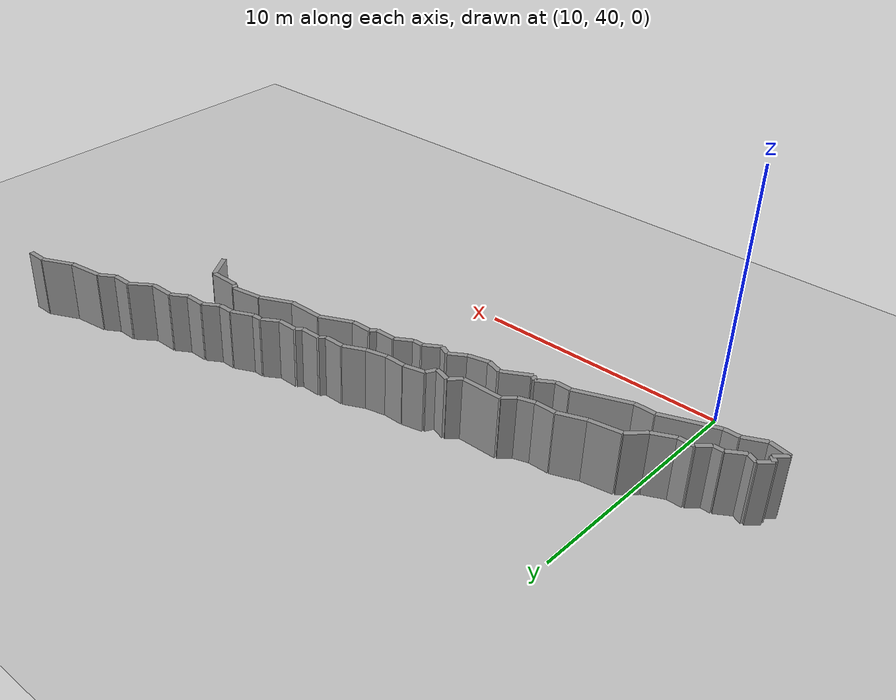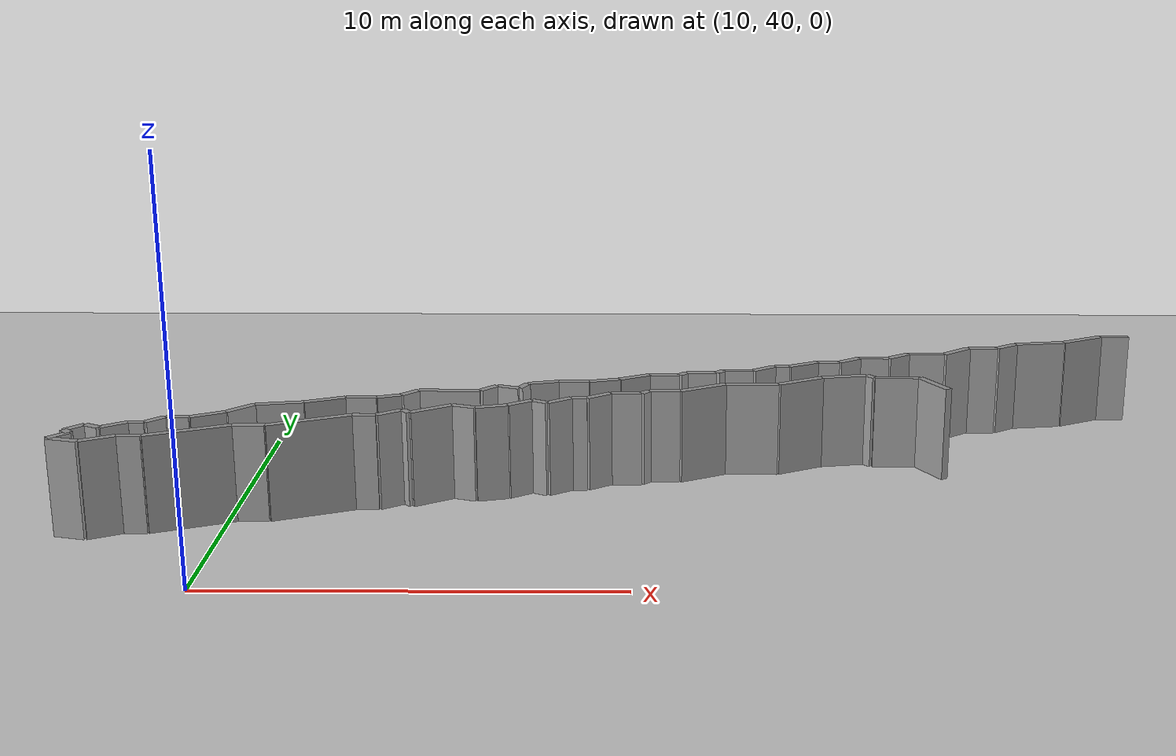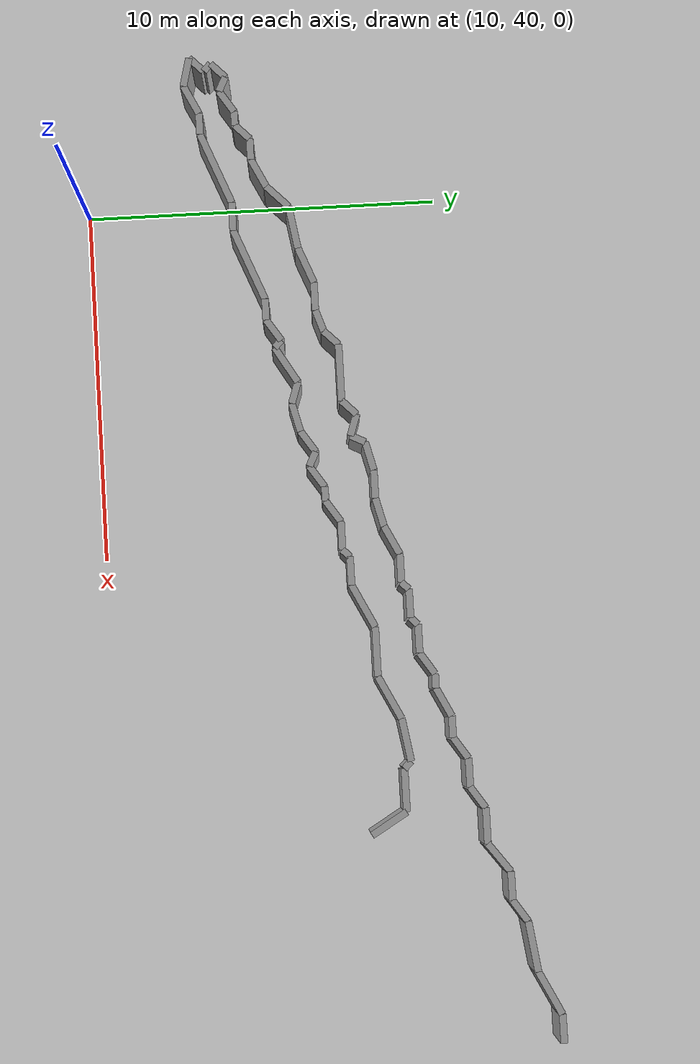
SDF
<sdf version="1.4">
 <world name="1_wall">
  <model name="ground_plane">
   <static>1</static>
   <link name="link">
    <collision name="collision">
     <geometry><plane><normal>0 0 1</normal><size>1000 1000</size></plane></geometry>
     <surface><friction><ode><mu>100</mu><mu2>50</mu2></ode></friction></surface>
    </collision>
    <visual name="visual">
     <cast_shadows>0</cast_shadows>
     <geometry><plane><normal>0 0 1</normal><size>10000 10000</size></plane></geometry>
     <material>
      <script><uri>file://media/materials/scripts/gazebo.material</uri><name>Gazebo/Grey</name></script>
     </material>
    </visual>
    <velocity_decay><linear>0</linear><angular>0</angular></velocity_decay>
   </link>
  </model>
  <model name="Wall_551">
   <static>1</static>
   <link name="Wall_551">
    <collision name="Wall_Collision_551">
     <geometry><box><size>0.8 0.2 2.5</size></box></geometry>
     <pose>0 0 1.25 0 -0 0</pose>
    </collision>
    <visual name="Wall_Visual_551">
     <pose>0 0 1.25 0 -0 0</pose>
     <geometry><box><size>0.8 0.2 2.5</size></box></geometry>
     <material>
      <script><uri>file://media/materials/scripts/gazebo.material</uri><name>Gazebo/Grey</name></script>
     </material>
    </visual>
    <velocity_decay><linear>0</linear><angular>0</angular></velocity_decay>
    <pose>33.8 52.2 0 0 0 3.14159265359</pose>
   </link>
  </model>
  <model name="Wall_552">
   <static>1</static>
   <link name="Wall_552">
    <collision name="Wall_Collision_552">
     <geometry><box><size>1.3416407865 0.2 2.5</size></box></geometry>
     <pose>0 0 1.25 0 -0 0</pose>
    </collision>
    <visual name="Wall_Visual_552">
     <pose>0 0 1.25 0 -0 0</pose>
     <geometry><box><size>1.3416407865 0.2 2.5</size></box></geometry>
     <material>
      <script><uri>file://media/materials/scripts/gazebo.material</uri><name>Gazebo/Grey</name></script>
     </material>
    </visual>
    <velocity_decay><linear>0</linear><angular>0</angular></velocity_decay>
    <pose>32.8 51.9 0 0 0 -2.67794504459</pose>
   </link>
  </model>
  <model name="Wall_553">
   <static>1</static>
   <link name="Wall_553">
    <collision name="Wall_Collision_553">
     <geometry><box><size>1.41421356237 0.2 2.5</size></box></geometry>
     <pose>0 0 1.25 0 -0 0</pose>
    </collision>
    <visual name="Wall_Visual_553">
     <pose>0 0 1.25 0 -0 0</pose>
     <geometry><box><size>1.41421356237 0.2 2.5</size></box></geometry>
     <material>
      <script><uri>file://media/materials/scripts/gazebo.material</uri><name>Gazebo/Grey</name></script>
     </material>
    </visual>
    <velocity_decay><linear>0</linear><angular>0</angular></velocity_decay>
    <pose>31.5 51.5 0 0 0 -2.99969559899</pose>
   </link>
  </model>
  <model name="Wall_554">
   <static>1</static>
   <link name="Wall_554">
    <collision name="Wall_Collision_554">
     <geometry><box><size>0.721110255093 0.2 2.5</size></box></geometry>
     <pose>0 0 1.25 0 -0 0</pose>
    </collision>
    <visual name="Wall_Visual_554">
     <pose>0 0 1.25 0 -0 0</pose>
     <geometry><box><size>0.721110255093 0.2 2.5</size></box></geometry>
     <material>
      <script><uri>file://media/materials/scripts/gazebo.material</uri><name>Gazebo/Grey</name></script>
     </material>
    </visual>
    <velocity_decay><linear>0</linear><angular>0</angular></velocity_decay>
    <pose>30.5 51.2 0 0 0 -2.55359005004</pose>
   </link>
  </model>
  <model name="Wall_555">
   <static>1</static>
   <link name="Wall_555">
    <collision name="Wall_Collision_555">
     <geometry><box><size>0.8 0.2 2.5</size></box></geometry>
     <pose>0 0 1.25 0 -0 0</pose>
    </collision>
    <visual name="Wall_Visual_555">
     <pose>0 0 1.25 0 -0 0</pose>
     <geometry><box><size>0.8 0.2 2.5</size></box></geometry>
     <material>
      <script><uri>file://media/materials/scripts/gazebo.material</uri><name>Gazebo/Grey</name></script>
     </material>
    </visual>
    <velocity_decay><linear>0</linear><angular>0</angular></velocity_decay>
    <pose>29.8 51.0 0 0 0 3.14159265359</pose>
   </link>
  </model>
  <model name="Wall_556">
   <static>1</static>
   <link name="Wall_556">
    <collision name="Wall_Collision_556">
     <geometry><box><size>1.0 0.2 2.5</size></box></geometry>
     <pose>0 0 1.25 0 -0 0</pose>
    </collision>
    <visual name="Wall_Visual_556">
     <pose>0 0 1.25 0 -0 0</pose>
     <geometry><box><size>1.0 0.2 2.5</size></box></geometry>
     <material>
      <script><uri>file://media/materials/scripts/gazebo.material</uri><name>Gazebo/Grey</name></script>
     </material>
    </visual>
    <velocity_decay><linear>0</linear><angular>0</angular></velocity_decay>
    <pose>29.0 50.7 0 0 0 -2.4980915448</pose>
   </link>
  </model>
  <model name="Wall_557">
   <static>1</static>
   <link name="Wall_557">
    <collision name="Wall_Collision_557">
     <geometry><box><size>1.0 0.2 2.5</size></box></geometry>
     <pose>0 0 1.25 0 -0 0</pose>
    </collision>
    <visual name="Wall_Visual_557">
     <pose>0 0 1.25 0 -0 0</pose>
     <geometry><box><size>1.0 0.2 2.5</size></box></geometry>
     <material>
      <script><uri>file://media/materials/scripts/gazebo.material</uri><name>Gazebo/Grey</name></script>
     </material>
    </visual>
    <velocity_decay><linear>0</linear><angular>0</angular></velocity_decay>
    <pose>28.1 50.4 0 0 0 3.14159265359</pose>
   </link>
  </model>
  <model name="Wall_558">
   <static>1</static>
   <link name="Wall_558">
    <collision name="Wall_Collision_558">
     <geometry><box><size>0.721110255093 0.2 2.5</size></box></geometry>
     <pose>0 0 1.25 0 -0 0</pose>
    </collision>
    <visual name="Wall_Visual_558">
     <pose>0 0 1.25 0 -0 0</pose>
     <geometry><box><size>0.721110255093 0.2 2.5</size></box></geometry>
     <material>
      <script><uri>file://media/materials/scripts/gazebo.material</uri><name>Gazebo/Grey</name></script>
     </material>
    </visual>
    <velocity_decay><linear>0</linear><angular>0</angular></velocity_decay>
    <pose>27.3 50.2 0 0 0 -2.55359005004</pose>
   </link>
  </model>
  <model name="Wall_559">
   <static>1</static>
   <link name="Wall_559">
    <collision name="Wall_Collision_559">
     <geometry><box><size>0.8 0.2 2.5</size></box></geometry>
     <pose>0 0 1.25 0 -0 0</pose>
    </collision>
    <visual name="Wall_Visual_559">
     <pose>0 0 1.25 0 -0 0</pose>
     <geometry><box><size>0.8 0.2 2.5</size></box></geometry>
     <material>
      <script><uri>file://media/materials/scripts/gazebo.material</uri><name>Gazebo/Grey</name></script>
     </material>
    </visual>
    <velocity_decay><linear>0</linear><angular>0</angular></velocity_decay>
    <pose>26.6 50.0 0 0 0 3.14159265359</pose>
   </link>
  </model>
  <model name="Wall_560">
   <static>1</static>
   <link name="Wall_560">
    <collision name="Wall_Collision_560">
     <geometry><box><size>0.721110255093 0.2 2.5</size></box></geometry>
     <pose>0 0 1.25 0 -0 0</pose>
    </collision>
    <visual name="Wall_Visual_560">
     <pose>0 0 1.25 0 -0 0</pose>
     <geometry><box><size>0.721110255093 0.2 2.5</size></box></geometry>
     <material>
      <script><uri>file://media/materials/scripts/gazebo.material</uri><name>Gazebo/Grey</name></script>
     </material>
    </visual>
    <velocity_decay><linear>0</linear><angular>0</angular></velocity_decay>
    <pose>25.9 49.8 0 0 0 -2.55359005004</pose>
   </link>
  </model>
  <model name="Wall_561">
   <static>1</static>
   <link name="Wall_561">
    <collision name="Wall_Collision_561">
     <geometry><box><size>0.6 0.2 2.5</size></box></geometry>
     <pose>0 0 1.25 0 -0 0</pose>
    </collision>
    <visual name="Wall_Visual_561">
     <pose>0 0 1.25 0 -0 0</pose>
     <geometry><box><size>0.6 0.2 2.5</size></box></geometry>
     <material>
      <script><uri>file://media/materials/scripts/gazebo.material</uri><name>Gazebo/Grey</name></script>
     </material>
    </visual>
    <velocity_decay><linear>0</linear><angular>0</angular></velocity_decay>
    <pose>25.3 49.6 0 0 0 3.14159265359</pose>
   </link>
  </model>
  <model name="Wall_562">
   <static>1</static>
   <link name="Wall_562">
    <collision name="Wall_Collision_562">
     <geometry><box><size>0.894427191 0.2 2.5</size></box></geometry>
     <pose>0 0 1.25 0 -0 0</pose>
    </collision>
    <visual name="Wall_Visual_562">
     <pose>0 0 1.25 0 -0 0</pose>
     <geometry><box><size>0.894427191 0.2 2.5</size></box></geometry>
     <material>
      <script><uri>file://media/materials/scripts/gazebo.material</uri><name>Gazebo/Grey</name></script>
     </material>
    </visual>
    <velocity_decay><linear>0</linear><angular>0</angular></velocity_decay>
    <pose>24.6 49.4 0 0 0 -2.67794504459</pose>
   </link>
  </model>
  <model name="Wall_563">
   <static>1</static>
   <link name="Wall_563">
    <collision name="Wall_Collision_563">
     <geometry><box><size>0.4 0.2 2.5</size></box></geometry>
     <pose>0 0 1.25 0 -0 0</pose>
    </collision>
    <visual name="Wall_Visual_563">
     <pose>0 0 1.25 0 -0 0</pose>
     <geometry><box><size>0.4 0.2 2.5</size></box></geometry>
     <material>
      <script><uri>file://media/materials/scripts/gazebo.material</uri><name>Gazebo/Grey</name></script>
     </material>
    </visual>
    <velocity_decay><linear>0</linear><angular>0</angular></velocity_decay>
    <pose>24.0 49.2 0 0 0 3.14159265359</pose>
   </link>
  </model>
  <model name="Wall_564">
   <static>1</static>
   <link name="Wall_564">
    <collision name="Wall_Collision_564">
     <geometry><box><size>0.721110255093 0.2 2.5</size></box></geometry>
     <pose>0 0 1.25 0 -0 0</pose>
    </collision>
    <visual name="Wall_Visual_564">
     <pose>0 0 1.25 0 -0 0</pose>
     <geometry><box><size>0.721110255093 0.2 2.5</size></box></geometry>
     <material>
      <script><uri>file://media/materials/scripts/gazebo.material</uri><name>Gazebo/Grey</name></script>
     </material>
    </visual>
    <velocity_decay><linear>0</linear><angular>0</angular></velocity_decay>
    <pose>23.5 49.0 0 0 0 -2.55359005004</pose>
   </link>
  </model>
  <model name="Wall_565">
   <static>1</static>
   <link name="Wall_565">
    <collision name="Wall_Collision_565">
     <geometry><box><size>0.8 0.2 2.5</size></box></geometry>
     <pose>0 0 1.25 0 -0 0</pose>
    </collision>
    <visual name="Wall_Visual_565">
     <pose>0 0 1.25 0 -0 0</pose>
     <geometry><box><size>0.8 0.2 2.5</size></box></geometry>
     <material>
      <script><uri>file://media/materials/scripts/gazebo.material</uri><name>Gazebo/Grey</name></script>
     </material>
    </visual>
    <velocity_decay><linear>0</linear><angular>0</angular></velocity_decay>
    <pose>22.8 48.8 0 0 0 3.14159265359</pose>
   </link>
  </model>
  <model name="Wall_566">
   <static>1</static>
   <link name="Wall_566">
    <collision name="Wall_Collision_566">
     <geometry><box><size>0.282842712475 0.2 2.5</size></box></geometry>
     <pose>0 0 1.25 0 -0 0</pose>
    </collision>
    <visual name="Wall_Visual_566">
     <pose>0 0 1.25 0 -0 0</pose>
     <geometry><box><size>0.282842712475 0.2 2.5</size></box></geometry>
     <material>
      <script><uri>file://media/materials/scripts/gazebo.material</uri><name>Gazebo/Grey</name></script>
     </material>
    </visual>
    <velocity_decay><linear>0</linear><angular>0</angular></velocity_decay>
    <pose>22.3 48.7 0 0 0 -2.35619449019</pose>
   </link>
  </model>
  <model name="Wall_567">
   <static>1</static>
   <link name="Wall_567">
    <collision name="Wall_Collision_567">
     <geometry><box><size>0.8 0.2 2.5</size></box></geometry>
     <pose>0 0 1.25 0 -0 0</pose>
    </collision>
    <visual name="Wall_Visual_567">
     <pose>0 0 1.25 0 -0 0</pose>
     <geometry><box><size>0.8 0.2 2.5</size></box></geometry>
     <material>
      <script><uri>file://media/materials/scripts/gazebo.material</uri><name>Gazebo/Grey</name></script>
     </material>
    </visual>
    <velocity_decay><linear>0</linear><angular>0</angular></velocity_decay>
    <pose>21.8 48.6 0 0 0 3.14159265359</pose>
   </link>
  </model>
  <model name="Wall_568">
   <static>1</static>
   <link name="Wall_568">
    <collision name="Wall_Collision_568">
     <geometry><box><size>0.282842712475 0.2 2.5</size></box></geometry>
     <pose>0 0 1.25 0 -0 0</pose>
    </collision>
    <visual name="Wall_Visual_568">
     <pose>0 0 1.25 0 -0 0</pose>
     <geometry><box><size>0.282842712475 0.2 2.5</size></box></geometry>
     <material>
      <script><uri>file://media/materials/scripts/gazebo.material</uri><name>Gazebo/Grey</name></script>
     </material>
    </visual>
    <velocity_decay><linear>0</linear><angular>0</angular></velocity_decay>
    <pose>21.3 48.5 0 0 0 -2.35619449019</pose>
   </link>
  </model>
  <model name="Wall_569">
   <static>1</static>
   <link name="Wall_569">
    <collision name="Wall_Collision_569">
     <geometry><box><size>0.8 0.2 2.5</size></box></geometry>
     <pose>0 0 1.25 0 -0 0</pose>
    </collision>
    <visual name="Wall_Visual_569">
     <pose>0 0 1.25 0 -0 0</pose>
     <geometry><box><size>0.8 0.2 2.5</size></box></geometry>
     <material>
      <script><uri>file://media/materials/scripts/gazebo.material</uri><name>Gazebo/Grey</name></script>
     </material>
    </visual>
    <velocity_decay><linear>0</linear><angular>0</angular></velocity_decay>
    <pose>20.8 48.4 0 0 0 3.14159265359</pose>
   </link>
  </model>
  <model name="Wall_570">
   <static>1</static>
   <link name="Wall_570">
    <collision name="Wall_Collision_570">
     <geometry><box><size>0.894427191 0.2 2.5</size></box></geometry>
     <pose>0 0 1.25 0 -0 0</pose>
    </collision>
    <visual name="Wall_Visual_570">
     <pose>0 0 1.25 0 -0 0</pose>
     <geometry><box><size>0.894427191 0.2 2.5</size></box></geometry>
     <material>
      <script><uri>file://media/materials/scripts/gazebo.material</uri><name>Gazebo/Grey</name></script>
     </material>
    </visual>
    <velocity_decay><linear>0</linear><angular>0</angular></velocity_decay>
    <pose>20.0 48.2 0 0 0 -2.67794504459</pose>
   </link>
  </model>
  <model name="Wall_571">
   <static>1</static>
   <link name="Wall_571">
    <collision name="Wall_Collision_571">
     <geometry><box><size>0.824621125124 0.2 2.5</size></box></geometry>
     <pose>0 0 1.25 0 -0 0</pose>
    </collision>
    <visual name="Wall_Visual_571">
     <pose>0 0 1.25 0 -0 0</pose>
     <geometry><box><size>0.824621125124 0.2 2.5</size></box></geometry>
     <material>
      <script><uri>file://media/materials/scripts/gazebo.material</uri><name>Gazebo/Grey</name></script>
     </material>
    </visual>
    <velocity_decay><linear>0</linear><angular>0</angular></velocity_decay>
    <pose>19.2 47.9 0 0 0 -2.89661399046</pose>
   </link>
  </model>
  <model name="Wall_572">
   <static>1</static>
   <link name="Wall_572">
    <collision name="Wall_Collision_572">
     <geometry><box><size>0.8 0.2 2.5</size></box></geometry>
     <pose>0 0 1.25 0 -0 0</pose>
    </collision>
    <visual name="Wall_Visual_572">
     <pose>0 0 1.25 0 -0 0</pose>
     <geometry><box><size>0.8 0.2 2.5</size></box></geometry>
     <material>
      <script><uri>file://media/materials/scripts/gazebo.material</uri><name>Gazebo/Grey</name></script>
     </material>
    </visual>
    <velocity_decay><linear>0</linear><angular>0</angular></velocity_decay>
    <pose>18.4 47.8 0 0 0 3.14159265359</pose>
   </link>
  </model>
  <model name="Wall_573">
   <static>1</static>
   <link name="Wall_573">
    <collision name="Wall_Collision_573">
     <geometry><box><size>0.824621125124 0.2 2.5</size></box></geometry>
     <pose>0 0 1.25 0 -0 0</pose>
    </collision>
    <visual name="Wall_Visual_573">
     <pose>0 0 1.25 0 -0 0</pose>
     <geometry><box><size>0.824621125124 0.2 2.5</size></box></geometry>
     <material>
      <script><uri>file://media/materials/scripts/gazebo.material</uri><name>Gazebo/Grey</name></script>
     </material>
    </visual>
    <velocity_decay><linear>0</linear><angular>0</angular></velocity_decay>
    <pose>17.6 47.7 0 0 0 -2.89661399046</pose>
   </link>
  </model>
  <model name="Wall_574">
   <static>1</static>
   <link name="Wall_574">
    <collision name="Wall_Collision_574">
     <geometry><box><size>0.4472135955 0.2 2.5</size></box></geometry>
     <pose>0 0 1.25 0 -0 0</pose>
    </collision>
    <visual name="Wall_Visual_574">
     <pose>0 0 1.25 0 -0 0</pose>
     <geometry><box><size>0.4472135955 0.2 2.5</size></box></geometry>
     <material>
      <script><uri>file://media/materials/scripts/gazebo.material</uri><name>Gazebo/Grey</name></script>
     </material>
    </visual>
    <velocity_decay><linear>0</linear><angular>0</angular></velocity_decay>
    <pose>17.1 47.4 0 0 0 -2.0344439358</pose>
   </link>
  </model>
  <model name="Wall_575">
   <static>1</static>
   <link name="Wall_575">
    <collision name="Wall_Collision_575">
     <geometry><box><size>0.632455532034 0.2 2.5</size></box></geometry>
     <pose>0 0 1.25 0 -0 0</pose>
    </collision>
    <visual name="Wall_Visual_575">
     <pose>0 0 1.25 0 -0 0</pose>
     <geometry><box><size>0.632455532034 0.2 2.5</size></box></geometry>
     <material>
      <script><uri>file://media/materials/scripts/gazebo.material</uri><name>Gazebo/Grey</name></script>
     </material>
    </visual>
    <velocity_decay><linear>0</linear><angular>0</angular></velocity_decay>
    <pose>16.7 47.3 0 0 0 2.81984209919</pose>
   </link>
  </model>
  <model name="Wall_576">
   <static>1</static>
   <link name="Wall_576">
    <collision name="Wall_Collision_576">
     <geometry><box><size>0.565685424949 0.2 2.5</size></box></geometry>
     <pose>0 0 1.25 0 -0 0</pose>
    </collision>
    <visual name="Wall_Visual_576">
     <pose>0 0 1.25 0 -0 0</pose>
     <geometry><box><size>0.565685424949 0.2 2.5</size></box></geometry>
     <material>
      <script><uri>file://media/materials/scripts/gazebo.material</uri><name>Gazebo/Grey</name></script>
     </material>
    </visual>
    <velocity_decay><linear>0</linear><angular>0</angular></velocity_decay>
    <pose>16.2 47.2 0 0 0 -2.35619449019</pose>
   </link>
  </model>
  <model name="Wall_577">
   <static>1</static>
   <link name="Wall_577">
    <collision name="Wall_Collision_577">
     <geometry><box><size>1.6 0.2 2.5</size></box></geometry>
     <pose>0 0 1.25 0 -0 0</pose>
    </collision>
    <visual name="Wall_Visual_577">
     <pose>0 0 1.25 0 -0 0</pose>
     <geometry><box><size>1.6 0.2 2.5</size></box></geometry>
     <material>
      <script><uri>file://media/materials/scripts/gazebo.material</uri><name>Gazebo/Grey</name></script>
     </material>
    </visual>
    <velocity_decay><linear>0</linear><angular>0</angular></velocity_decay>
    <pose>15.2 47.0 0 0 0 3.14159265359</pose>
   </link>
  </model>
  <model name="Wall_578">
   <static>1</static>
   <link name="Wall_578">
    <collision name="Wall_Collision_578">
     <geometry><box><size>0.565685424949 0.2 2.5</size></box></geometry>
     <pose>0 0 1.25 0 -0 0</pose>
    </collision>
    <visual name="Wall_Visual_578">
     <pose>0 0 1.25 0 -0 0</pose>
     <geometry><box><size>0.565685424949 0.2 2.5</size></box></geometry>
     <material>
      <script><uri>file://media/materials/scripts/gazebo.material</uri><name>Gazebo/Grey</name></script>
     </material>
    </visual>
    <velocity_decay><linear>0</linear><angular>0</angular></velocity_decay>
    <pose>14.2 46.8 0 0 0 -2.35619449019</pose>
   </link>
  </model>
  <model name="Wall_579">
   <static>1</static>
   <link name="Wall_579">
    <collision name="Wall_Collision_579">
     <geometry><box><size>0.632455532034 0.2 2.5</size></box></geometry>
     <pose>0 0 1.25 0 -0 0</pose>
    </collision>
    <visual name="Wall_Visual_579">
     <pose>0 0 1.25 0 -0 0</pose>
     <geometry><box><size>0.632455532034 0.2 2.5</size></box></geometry>
     <material>
      <script><uri>file://media/materials/scripts/gazebo.material</uri><name>Gazebo/Grey</name></script>
     </material>
    </visual>
    <velocity_decay><linear>0</linear><angular>0</angular></velocity_decay>
    <pose>13.7 46.5 0 0 0 -2.81984209919</pose>
   </link>
  </model>
  <model name="Wall_580">
   <static>1</static>
   <link name="Wall_580">
    <collision name="Wall_Collision_580">
     <geometry><box><size>0.8 0.2 2.5</size></box></geometry>
     <pose>0 0 1.25 0 -0 0</pose>
    </collision>
    <visual name="Wall_Visual_580">
     <pose>0 0 1.25 0 -0 0</pose>
     <geometry><box><size>0.8 0.2 2.5</size></box></geometry>
     <material>
      <script><uri>file://media/materials/scripts/gazebo.material</uri><name>Gazebo/Grey</name></script>
     </material>
    </visual>
    <velocity_decay><linear>0</linear><angular>0</angular></velocity_decay>
    <pose>13.0 46.4 0 0 0 3.14159265359</pose>
   </link>
  </model>
  <model name="Wall_581">
   <static>1</static>
   <link name="Wall_581">
    <collision name="Wall_Collision_581">
     <geometry><box><size>1.07703296143 0.2 2.5</size></box></geometry>
     <pose>0 0 1.25 0 -0 0</pose>
    </collision>
    <visual name="Wall_Visual_581">
     <pose>0 0 1.25 0 -0 0</pose>
     <geometry><box><size>1.07703296143 0.2 2.5</size></box></geometry>
     <material>
      <script><uri>file://media/materials/scripts/gazebo.material</uri><name>Gazebo/Grey</name></script>
     </material>
    </visual>
    <velocity_decay><linear>0</linear><angular>0</angular></velocity_decay>
    <pose>12.1 46.2 0 0 0 -2.76108627648</pose>
   </link>
  </model>
  <model name="Wall_582">
   <static>1</static>
   <link name="Wall_582">
    <collision name="Wall_Collision_582">
     <geometry><box><size>1.21655250606 0.2 2.5</size></box></geometry>
     <pose>0 0 1.25 0 -0 0</pose>
    </collision>
    <visual name="Wall_Visual_582">
     <pose>0 0 1.25 0 -0 0</pose>
     <geometry><box><size>1.21655250606 0.2 2.5</size></box></geometry>
     <material>
      <script><uri>file://media/materials/scripts/gazebo.material</uri><name>Gazebo/Grey</name></script>
     </material>
    </visual>
    <velocity_decay><linear>0</linear><angular>0</angular></velocity_decay>
    <pose>11.0 45.9 0 0 0 -2.97644397618</pose>
   </link>
  </model>
  <model name="Wall_583">
   <static>1</static>
   <link name="Wall_583">
    <collision name="Wall_Collision_583">
     <geometry><box><size>0.848528137424 0.2 2.5</size></box></geometry>
     <pose>0 0 1.25 0 -0 0</pose>
    </collision>
    <visual name="Wall_Visual_583">
     <pose>0 0 1.25 0 -0 0</pose>
     <geometry><box><size>0.848528137424 0.2 2.5</size></box></geometry>
     <material>
      <script><uri>file://media/materials/scripts/gazebo.material</uri><name>Gazebo/Grey</name></script>
     </material>
    </visual>
    <velocity_decay><linear>0</linear><angular>0</angular></velocity_decay>
    <pose>10.1 45.5 0 0 0 -2.35619449019</pose>
   </link>
  </model>
  <model name="Wall_584">
   <static>1</static>
   <link name="Wall_584">
    <collision name="Wall_Collision_584">
     <geometry><box><size>0.894427191 0.2 2.5</size></box></geometry>
     <pose>0 0 1.25 0 -0 0</pose>
    </collision>
    <visual name="Wall_Visual_584">
     <pose>0 0 1.25 0 -0 0</pose>
     <geometry><box><size>0.894427191 0.2 2.5</size></box></geometry>
     <material>
      <script><uri>file://media/materials/scripts/gazebo.material</uri><name>Gazebo/Grey</name></script>
     </material>
    </visual>
    <velocity_decay><linear>0</linear><angular>0</angular></velocity_decay>
    <pose>9.4 45.0 0 0 0 -2.67794504459</pose>
   </link>
  </model>
  <model name="Wall_585">
   <static>1</static>
   <link name="Wall_585">
    <collision name="Wall_Collision_585">
     <geometry><box><size>0.6 0.2 2.5</size></box></geometry>
     <pose>0 0 1.25 0 -0 0</pose>
    </collision>
    <visual name="Wall_Visual_585">
     <pose>0 0 1.25 0 -0 0</pose>
     <geometry><box><size>0.6 0.2 2.5</size></box></geometry>
     <material>
      <script><uri>file://media/materials/scripts/gazebo.material</uri><name>Gazebo/Grey</name></script>
     </material>
    </visual>
    <velocity_decay><linear>0</linear><angular>0</angular></velocity_decay>
    <pose>8.7 44.8 0 0 0 3.14159265359</pose>
   </link>
  </model>
  <model name="Wall_586">
   <static>1</static>
   <link name="Wall_586">
    <collision name="Wall_Collision_586">
     <geometry><box><size>0.565685424949 0.2 2.5</size></box></geometry>
     <pose>0 0 1.25 0 -0 0</pose>
    </collision>
    <visual name="Wall_Visual_586">
     <pose>0 0 1.25 0 -0 0</pose>
     <geometry><box><size>0.565685424949 0.2 2.5</size></box></geometry>
     <material>
      <script><uri>file://media/materials/scripts/gazebo.material</uri><name>Gazebo/Grey</name></script>
     </material>
    </visual>
    <velocity_decay><linear>0</linear><angular>0</angular></velocity_decay>
    <pose>8.2 44.6 0 0 0 -2.35619449019</pose>
   </link>
  </model>
  <model name="Wall_587">
   <static>1</static>
   <link name="Wall_587">
    <collision name="Wall_Collision_587">
     <geometry><box><size>0.4 0.2 2.5</size></box></geometry>
     <pose>0 0 1.25 0 -0 0</pose>
    </collision>
    <visual name="Wall_Visual_587">
     <pose>0 0 1.25 0 -0 0</pose>
     <geometry><box><size>0.4 0.2 2.5</size></box></geometry>
     <material>
      <script><uri>file://media/materials/scripts/gazebo.material</uri><name>Gazebo/Grey</name></script>
     </material>
    </visual>
    <velocity_decay><linear>0</linear><angular>0</angular></velocity_decay>
    <pose>7.8 44.4 0 0 0 3.14159265359</pose>
   </link>
  </model>
  <model name="Wall_588">
   <static>1</static>
   <link name="Wall_588">
    <collision name="Wall_Collision_588">
     <geometry><box><size>0.721110255093 0.2 2.5</size></box></geometry>
     <pose>0 0 1.25 0 -0 0</pose>
    </collision>
    <visual name="Wall_Visual_588">
     <pose>0 0 1.25 0 -0 0</pose>
     <geometry><box><size>0.721110255093 0.2 2.5</size></box></geometry>
     <material>
      <script><uri>file://media/materials/scripts/gazebo.material</uri><name>Gazebo/Grey</name></script>
     </material>
    </visual>
    <velocity_decay><linear>0</linear><angular>0</angular></velocity_decay>
    <pose>7.3 44.2 0 0 0 -2.55359005004</pose>
   </link>
  </model>
  <model name="Wall_589">
   <static>1</static>
   <link name="Wall_589">
    <collision name="Wall_Collision_589">
     <geometry><box><size>0.4472135955 0.2 2.5</size></box></geometry>
     <pose>0 0 1.25 0 -0 0</pose>
    </collision>
    <visual name="Wall_Visual_589">
     <pose>0 0 1.25 0 -0 0</pose>
     <geometry><box><size>0.4472135955 0.2 2.5</size></box></geometry>
     <material>
      <script><uri>file://media/materials/scripts/gazebo.material</uri><name>Gazebo/Grey</name></script>
     </material>
    </visual>
    <velocity_decay><linear>0</linear><angular>0</angular></velocity_decay>
    <pose>6.8 44.1 0 0 0 2.67794504459</pose>
   </link>
  </model>
  <model name="Wall_590">
   <static>1</static>
   <link name="Wall_590">
    <collision name="Wall_Collision_590">
     <geometry><box><size>0.565685424949 0.2 2.5</size></box></geometry>
     <pose>0 0 1.25 0 -0 0</pose>
    </collision>
    <visual name="Wall_Visual_590">
     <pose>0 0 1.25 0 -0 0</pose>
     <geometry><box><size>0.565685424949 0.2 2.5</size></box></geometry>
     <material>
      <script><uri>file://media/materials/scripts/gazebo.material</uri><name>Gazebo/Grey</name></script>
     </material>
    </visual>
    <velocity_decay><linear>0</linear><angular>0</angular></velocity_decay>
    <pose>6.4 44.0 0 0 0 -2.35619449019</pose>
   </link>
  </model>
  <model name="Wall_591">
   <static>1</static>
   <link name="Wall_591">
    <collision name="Wall_Collision_591">
     <geometry><box><size>0.282842712475 0.2 2.5</size></box></geometry>
     <pose>0 0 1.25 0 -0 0</pose>
    </collision>
    <visual name="Wall_Visual_591">
     <pose>0 0 1.25 0 -0 0</pose>
     <geometry><box><size>0.282842712475 0.2 2.5</size></box></geometry>
     <material>
      <script><uri>file://media/materials/scripts/gazebo.material</uri><name>Gazebo/Grey</name></script>
     </material>
    </visual>
    <velocity_decay><linear>0</linear><angular>0</angular></velocity_decay>
    <pose>6.3 43.7 0 0 0 -0.785398163397</pose>
   </link>
  </model>
  <model name="Wall_592">
   <static>1</static>
   <link name="Wall_592">
    <collision name="Wall_Collision_592">
     <geometry><box><size>0.565685424949 0.2 2.5</size></box></geometry>
     <pose>0 0 1.25 0 -0 0</pose>
    </collision>
    <visual name="Wall_Visual_592">
     <pose>0 0 1.25 0 -0 0</pose>
     <geometry><box><size>0.565685424949 0.2 2.5</size></box></geometry>
     <material>
      <script><uri>file://media/materials/scripts/gazebo.material</uri><name>Gazebo/Grey</name></script>
     </material>
    </visual>
    <velocity_decay><linear>0</linear><angular>0</angular></velocity_decay>
    <pose>6.2 43.4 0 0 0 -2.35619449019</pose>
   </link>
  </model>
  <model name="Wall_593">
   <static>1</static>
   <link name="Wall_593">
    <collision name="Wall_Collision_593">
     <geometry><box><size>0.824621125124 0.2 2.5</size></box></geometry>
     <pose>0 0 1.25 0 -0 0</pose>
    </collision>
    <visual name="Wall_Visual_593">
     <pose>0 0 1.25 0 -0 0</pose>
     <geometry><box><size>0.824621125124 0.2 2.5</size></box></geometry>
     <material>
      <script><uri>file://media/materials/scripts/gazebo.material</uri><name>Gazebo/Grey</name></script>
     </material>
    </visual>
    <velocity_decay><linear>0</linear><angular>0</angular></velocity_decay>
    <pose>6.4 43.1 0 0 0 -0.244978663127</pose>
   </link>
  </model>
  <model name="Wall_594">
   <static>1</static>
   <link name="Wall_594">
    <collision name="Wall_Collision_594">
     <geometry><box><size>0.894427191 0.2 2.5</size></box></geometry>
     <pose>0 0 1.25 0 -0 0</pose>
    </collision>
    <visual name="Wall_Visual_594">
     <pose>0 0 1.25 0 -0 0</pose>
     <geometry><box><size>0.894427191 0.2 2.5</size></box></geometry>
     <material>
      <script><uri>file://media/materials/scripts/gazebo.material</uri><name>Gazebo/Grey</name></script>
     </material>
    </visual>
    <velocity_decay><linear>0</linear><angular>0</angular></velocity_decay>
    <pose>7.2 43.2 0 0 0 0.463647609001</pose>
   </link>
  </model>
  <model name="Wall_595">
   <static>1</static>
   <link name="Wall_595">
    <collision name="Wall_Collision_595">
     <geometry><box><size>0.6 0.2 2.5</size></box></geometry>
     <pose>0 0 1.25 0 -0 0</pose>
    </collision>
    <visual name="Wall_Visual_595">
     <pose>0 0 1.25 0 -0 0</pose>
     <geometry><box><size>0.6 0.2 2.5</size></box></geometry>
     <material>
      <script><uri>file://media/materials/scripts/gazebo.material</uri><name>Gazebo/Grey</name></script>
     </material>
    </visual>
    <velocity_decay><linear>0</linear><angular>0</angular></velocity_decay>
    <pose>7.9 43.4 0 0 0 0.0</pose>
   </link>
  </model>
  <model name="Wall_596">
   <static>1</static>
   <link name="Wall_596">
    <collision name="Wall_Collision_596">
     <geometry><box><size>2.15406592285 0.2 2.5</size></box></geometry>
     <pose>0 0 1.25 0 -0 0</pose>
    </collision>
    <visual name="Wall_Visual_596">
     <pose>0 0 1.25 0 -0 0</pose>
     <geometry><box><size>2.15406592285 0.2 2.5</size></box></geometry>
     <material>
      <script><uri>file://media/materials/scripts/gazebo.material</uri><name>Gazebo/Grey</name></script>
     </material>
    </visual>
    <velocity_decay><linear>0</linear><angular>0</angular></velocity_decay>
    <pose>9.2 43.8 0 0 0 0.380506377112</pose>
   </link>
  </model>
  <model name="Wall_597">
   <static>1</static>
   <link name="Wall_597">
    <collision name="Wall_Collision_597">
     <geometry><box><size>0.8 0.2 2.5</size></box></geometry>
     <pose>0 0 1.25 0 -0 0</pose>
    </collision>
    <visual name="Wall_Visual_597">
     <pose>0 0 1.25 0 -0 0</pose>
     <geometry><box><size>0.8 0.2 2.5</size></box></geometry>
     <material>
      <script><uri>file://media/materials/scripts/gazebo.material</uri><name>Gazebo/Grey</name></script>
     </material>
    </visual>
    <velocity_decay><linear>0</linear><angular>0</angular></velocity_decay>
    <pose>10.6 44.2 0 0 0 0.0</pose>
   </link>
  </model>
  <model name="Wall_598">
   <static>1</static>
   <link name="Wall_598">
    <collision name="Wall_Collision_598">
     <geometry><box><size>2.15406592285 0.2 2.5</size></box></geometry>
     <pose>0 0 1.25 0 -0 0</pose>
    </collision>
    <visual name="Wall_Visual_598">
     <pose>0 0 1.25 0 -0 0</pose>
     <geometry><box><size>2.15406592285 0.2 2.5</size></box></geometry>
     <material>
      <script><uri>file://media/materials/scripts/gazebo.material</uri><name>Gazebo/Grey</name></script>
     </material>
    </visual>
    <velocity_decay><linear>0</linear><angular>0</angular></velocity_decay>
    <pose>12.0 44.6 0 0 0 0.380506377112</pose>
   </link>
  </model>
  <model name="Wall_599">
   <static>1</static>
   <link name="Wall_599">
    <collision name="Wall_Collision_599">
     <geometry><box><size>0.6 0.2 2.5</size></box></geometry>
     <pose>0 0 1.25 0 -0 0</pose>
    </collision>
    <visual name="Wall_Visual_599">
     <pose>0 0 1.25 0 -0 0</pose>
     <geometry><box><size>0.6 0.2 2.5</size></box></geometry>
     <material>
      <script><uri>file://media/materials/scripts/gazebo.material</uri><name>Gazebo/Grey</name></script>
     </material>
    </visual>
    <velocity_decay><linear>0</linear><angular>0</angular></velocity_decay>
    <pose>13.3 45.0 0 0 0 0.0</pose>
   </link>
  </model>
  <model name="Wall_600">
   <static>1</static>
   <link name="Wall_600">
    <collision name="Wall_Collision_600">
     <geometry><box><size>0.721110255093 0.2 2.5</size></box></geometry>
     <pose>0 0 1.25 0 -0 0</pose>
    </collision>
    <visual name="Wall_Visual_600">
     <pose>0 0 1.25 0 -0 0</pose>
     <geometry><box><size>0.721110255093 0.2 2.5</size></box></geometry>
     <material>
      <script><uri>file://media/materials/scripts/gazebo.material</uri><name>Gazebo/Grey</name></script>
     </material>
    </visual>
    <velocity_decay><linear>0</linear><angular>0</angular></velocity_decay>
    <pose>13.9 45.2 0 0 0 0.588002603548</pose>
   </link>
  </model>
  <model name="Wall_601">
   <static>1</static>
   <link name="Wall_601">
    <collision name="Wall_Collision_601">
     <geometry><box><size>0.282842712475 0.2 2.5</size></box></geometry>
     <pose>0 0 1.25 0 -0 0</pose>
    </collision>
    <visual name="Wall_Visual_601">
     <pose>0 0 1.25 0 -0 0</pose>
     <geometry><box><size>0.282842712475 0.2 2.5</size></box></geometry>
     <material>
      <script><uri>file://media/materials/scripts/gazebo.material</uri><name>Gazebo/Grey</name></script>
     </material>
    </visual>
    <velocity_decay><linear>0</linear><angular>0</angular></velocity_decay>
    <pose>14.3 45.3 0 0 0 -0.785398163397</pose>
   </link>
  </model>
  <model name="Wall_602">
   <static>1</static>
   <link name="Wall_602">
    <collision name="Wall_Collision_602">
     <geometry><box><size>1.16619037897 0.2 2.5</size></box></geometry>
     <pose>0 0 1.25 0 -0 0</pose>
    </collision>
    <visual name="Wall_Visual_602">
     <pose>0 0 1.25 0 -0 0</pose>
     <geometry><box><size>1.16619037897 0.2 2.5</size></box></geometry>
     <material>
      <script><uri>file://media/materials/scripts/gazebo.material</uri><name>Gazebo/Grey</name></script>
     </material>
    </visual>
    <velocity_decay><linear>0</linear><angular>0</angular></velocity_decay>
    <pose>14.9 45.5 0 0 0 0.540419500271</pose>
   </link>
  </model>
  <model name="Wall_603">
   <static>1</static>
   <link name="Wall_603">
    <collision name="Wall_Collision_603">
     <geometry><box><size>0.632455532034 0.2 2.5</size></box></geometry>
     <pose>0 0 1.25 0 -0 0</pose>
    </collision>
    <visual name="Wall_Visual_603">
     <pose>0 0 1.25 0 -0 0</pose>
     <geometry><box><size>0.632455532034 0.2 2.5</size></box></geometry>
     <material>
      <script><uri>file://media/materials/scripts/gazebo.material</uri><name>Gazebo/Grey</name></script>
     </material>
    </visual>
    <velocity_decay><linear>0</linear><angular>0</angular></velocity_decay>
    <pose>15.7 45.7 0 0 0 -0.321750554397</pose>
   </link>
  </model>
  <model name="Wall_604">
   <static>1</static>
   <link name="Wall_604">
    <collision name="Wall_Collision_604">
     <geometry><box><size>0.824621125124 0.2 2.5</size></box></geometry>
     <pose>0 0 1.25 0 -0 0</pose>
    </collision>
    <visual name="Wall_Visual_604">
     <pose>0 0 1.25 0 -0 0</pose>
     <geometry><box><size>0.824621125124 0.2 2.5</size></box></geometry>
     <material>
      <script><uri>file://media/materials/scripts/gazebo.material</uri><name>Gazebo/Grey</name></script>
     </material>
    </visual>
    <velocity_decay><linear>0</linear><angular>0</angular></velocity_decay>
    <pose>16.4 45.7 0 0 0 0.244978663127</pose>
   </link>
  </model>
  <model name="Wall_605">
   <static>1</static>
   <link name="Wall_605">
    <collision name="Wall_Collision_605">
     <geometry><box><size>0.721110255093 0.2 2.5</size></box></geometry>
     <pose>0 0 1.25 0 -0 0</pose>
    </collision>
    <visual name="Wall_Visual_605">
     <pose>0 0 1.25 0 -0 0</pose>
     <geometry><box><size>0.721110255093 0.2 2.5</size></box></geometry>
     <material>
      <script><uri>file://media/materials/scripts/gazebo.material</uri><name>Gazebo/Grey</name></script>
     </material>
    </visual>
    <velocity_decay><linear>0</linear><angular>0</angular></velocity_decay>
    <pose>17.1 46.0 0 0 0 0.588002603548</pose>
   </link>
  </model>
  <model name="Wall_606">
   <static>1</static>
   <link name="Wall_606">
    <collision name="Wall_Collision_606">
     <geometry><box><size>0.4472135955 0.2 2.5</size></box></geometry>
     <pose>0 0 1.25 0 -0 0</pose>
    </collision>
    <visual name="Wall_Visual_606">
     <pose>0 0 1.25 0 -0 0</pose>
     <geometry><box><size>0.4472135955 0.2 2.5</size></box></geometry>
     <material>
      <script><uri>file://media/materials/scripts/gazebo.material</uri><name>Gazebo/Grey</name></script>
     </material>
    </visual>
    <velocity_decay><linear>0</linear><angular>0</angular></velocity_decay>
    <pose>17.6 46.1 0 0 0 -0.463647609001</pose>
   </link>
  </model>
  <model name="Wall_607">
   <static>1</static>
   <link name="Wall_607">
    <collision name="Wall_Collision_607">
     <geometry><box><size>0.721110255093 0.2 2.5</size></box></geometry>
     <pose>0 0 1.25 0 -0 0</pose>
    </collision>
    <visual name="Wall_Visual_607">
     <pose>0 0 1.25 0 -0 0</pose>
     <geometry><box><size>0.721110255093 0.2 2.5</size></box></geometry>
     <material>
      <script><uri>file://media/materials/scripts/gazebo.material</uri><name>Gazebo/Grey</name></script>
     </material>
    </visual>
    <velocity_decay><linear>0</linear><angular>0</angular></velocity_decay>
    <pose>18.1 46.2 0 0 0 0.588002603548</pose>
   </link>
  </model>
  <model name="Wall_608">
   <static>1</static>
   <link name="Wall_608">
    <collision name="Wall_Collision_608">
     <geometry><box><size>0.4 0.2 2.5</size></box></geometry>
     <pose>0 0 1.25 0 -0 0</pose>
    </collision>
    <visual name="Wall_Visual_608">
     <pose>0 0 1.25 0 -0 0</pose>
     <geometry><box><size>0.4 0.2 2.5</size></box></geometry>
     <material>
      <script><uri>file://media/materials/scripts/gazebo.material</uri><name>Gazebo/Grey</name></script>
     </material>
    </visual>
    <velocity_decay><linear>0</linear><angular>0</angular></velocity_decay>
    <pose>18.6 46.4 0 0 0 0.0</pose>
   </link>
  </model>
  <model name="Wall_609">
   <static>1</static>
   <link name="Wall_609">
    <collision name="Wall_Collision_609">
     <geometry><box><size>0.721110255093 0.2 2.5</size></box></geometry>
     <pose>0 0 1.25 0 -0 0</pose>
    </collision>
    <visual name="Wall_Visual_609">
     <pose>0 0 1.25 0 -0 0</pose>
     <geometry><box><size>0.721110255093 0.2 2.5</size></box></geometry>
     <material>
      <script><uri>file://media/materials/scripts/gazebo.material</uri><name>Gazebo/Grey</name></script>
     </material>
    </visual>
    <velocity_decay><linear>0</linear><angular>0</angular></velocity_decay>
    <pose>19.1 46.6 0 0 0 0.588002603548</pose>
   </link>
  </model>
  <model name="Wall_610">
   <static>1</static>
   <link name="Wall_610">
    <collision name="Wall_Collision_610">
     <geometry><box><size>0.8 0.2 2.5</size></box></geometry>
     <pose>0 0 1.25 0 -0 0</pose>
    </collision>
    <visual name="Wall_Visual_610">
     <pose>0 0 1.25 0 -0 0</pose>
     <geometry><box><size>0.8 0.2 2.5</size></box></geometry>
     <material>
      <script><uri>file://media/materials/scripts/gazebo.material</uri><name>Gazebo/Grey</name></script>
     </material>
    </visual>
    <velocity_decay><linear>0</linear><angular>0</angular></velocity_decay>
    <pose>19.8 46.8 0 0 0 0.0</pose>
   </link>
  </model>
  <model name="Wall_611">
   <static>1</static>
   <link name="Wall_611">
    <collision name="Wall_Collision_611">
     <geometry><box><size>0.282842712475 0.2 2.5</size></box></geometry>
     <pose>0 0 1.25 0 -0 0</pose>
    </collision>
    <visual name="Wall_Visual_611">
     <pose>0 0 1.25 0 -0 0</pose>
     <geometry><box><size>0.282842712475 0.2 2.5</size></box></geometry>
     <material>
      <script><uri>file://media/materials/scripts/gazebo.material</uri><name>Gazebo/Grey</name></script>
     </material>
    </visual>
    <velocity_decay><linear>0</linear><angular>0</angular></velocity_decay>
    <pose>20.3 46.9 0 0 0 0.785398163397</pose>
   </link>
  </model>
  <model name="Wall_612">
   <static>1</static>
   <link name="Wall_612">
    <collision name="Wall_Collision_612">
     <geometry><box><size>0.8 0.2 2.5</size></box></geometry>
     <pose>0 0 1.25 0 -0 0</pose>
    </collision>
    <visual name="Wall_Visual_612">
     <pose>0 0 1.25 0 -0 0</pose>
     <geometry><box><size>0.8 0.2 2.5</size></box></geometry>
     <material>
      <script><uri>file://media/materials/scripts/gazebo.material</uri><name>Gazebo/Grey</name></script>
     </material>
    </visual>
    <velocity_decay><linear>0</linear><angular>0</angular></velocity_decay>
    <pose>20.8 47.0 0 0 0 0.0</pose>
   </link>
  </model>
  <model name="Wall_613">
   <static>1</static>
   <link name="Wall_613">
    <collision name="Wall_Collision_613">
     <geometry><box><size>1.3416407865 0.2 2.5</size></box></geometry>
     <pose>0 0 1.25 0 -0 0</pose>
    </collision>
    <visual name="Wall_Visual_613">
     <pose>0 0 1.25 0 -0 0</pose>
     <geometry><box><size>1.3416407865 0.2 2.5</size></box></geometry>
     <material>
      <script><uri>file://media/materials/scripts/gazebo.material</uri><name>Gazebo/Grey</name></script>
     </material>
    </visual>
    <velocity_decay><linear>0</linear><angular>0</angular></velocity_decay>
    <pose>21.8 47.3 0 0 0 0.463647609001</pose>
   </link>
  </model>
  <model name="Wall_614">
   <static>1</static>
   <link name="Wall_614">
    <collision name="Wall_Collision_614">
     <geometry><box><size>1.4 0.2 2.5</size></box></geometry>
     <pose>0 0 1.25 0 -0 0</pose>
    </collision>
    <visual name="Wall_Visual_614">
     <pose>0 0 1.25 0 -0 0</pose>
     <geometry><box><size>1.4 0.2 2.5</size></box></geometry>
     <material>
      <script><uri>file://media/materials/scripts/gazebo.material</uri><name>Gazebo/Grey</name></script>
     </material>
    </visual>
    <velocity_decay><linear>0</linear><angular>0</angular></velocity_decay>
    <pose>23.1 47.6 0 0 0 0.0</pose>
   </link>
  </model>
  <model name="Wall_615">
   <static>1</static>
   <link name="Wall_615">
    <collision name="Wall_Collision_615">
     <geometry><box><size>1.3416407865 0.2 2.5</size></box></geometry>
     <pose>0 0 1.25 0 -0 0</pose>
    </collision>
    <visual name="Wall_Visual_615">
     <pose>0 0 1.25 0 -0 0</pose>
     <geometry><box><size>1.3416407865 0.2 2.5</size></box></geometry>
     <material>
      <script><uri>file://media/materials/scripts/gazebo.material</uri><name>Gazebo/Grey</name></script>
     </material>
    </visual>
    <velocity_decay><linear>0</linear><angular>0</angular></velocity_decay>
    <pose>24.4 47.9 0 0 0 0.463647609001</pose>
   </link>
  </model>
  <model name="Wall_616">
   <static>1</static>
   <link name="Wall_616">
    <collision name="Wall_Collision_616">
     <geometry><box><size>1.21655250606 0.2 2.5</size></box></geometry>
     <pose>0 0 1.25 0 -0 0</pose>
    </collision>
    <visual name="Wall_Visual_616">
     <pose>0 0 1.25 0 -0 0</pose>
     <geometry><box><size>1.21655250606 0.2 2.5</size></box></geometry>
     <material>
      <script><uri>file://media/materials/scripts/gazebo.material</uri><name>Gazebo/Grey</name></script>
     </material>
    </visual>
    <velocity_decay><linear>0</linear><angular>0</angular></velocity_decay>
    <pose>25.6 48.3 0 0 0 0.165148677415</pose>
   </link>
  </model>
  <model name="Wall_617">
   <static>1</static>
   <link name="Wall_617">
    <collision name="Wall_Collision_617">
     <geometry><box><size>0.282842712475 0.2 2.5</size></box></geometry>
     <pose>0 0 1.25 0 -0 0</pose>
    </collision>
    <visual name="Wall_Visual_617">
     <pose>0 0 1.25 0 -0 0</pose>
     <geometry><box><size>0.282842712475 0.2 2.5</size></box></geometry>
     <material>
      <script><uri>file://media/materials/scripts/gazebo.material</uri><name>Gazebo/Grey</name></script>
     </material>
    </visual>
    <velocity_decay><linear>0</linear><angular>0</angular></velocity_decay>
    <pose>26.3 48.3 0 0 0 -0.785398163397</pose>
   </link>
  </model>
  <model name="Wall_618">
   <static>1</static>
   <link name="Wall_618">
    <collision name="Wall_Collision_618">
     <geometry><box><size>1.2 0.2 2.5</size></box></geometry>
     <pose>0 0 1.25 0 -0 0</pose>
    </collision>
    <visual name="Wall_Visual_618">
     <pose>0 0 1.25 0 -0 0</pose>
     <geometry><box><size>1.2 0.2 2.5</size></box></geometry>
     <material>
      <script><uri>file://media/materials/scripts/gazebo.material</uri><name>Gazebo/Grey</name></script>
     </material>
    </visual>
    <velocity_decay><linear>0</linear><angular>0</angular></velocity_decay>
    <pose>27.0 48.2 0 0 0 0.0</pose>
   </link>
  </model>
  <model name="Wall_619">
   <static>1</static>
   <link name="Wall_619">
    <collision name="Wall_Collision_619">
     <geometry><box><size>1.16619037897 0.2 2.5</size></box></geometry>
     <pose>0 0 1.25 0 -0 0</pose>
    </collision>
    <visual name="Wall_Visual_619">
     <pose>0 0 1.25 0 -0 0</pose>
     <geometry><box><size>1.16619037897 0.2 2.5</size></box></geometry>
     <material>
      <script><uri>file://media/materials/scripts/gazebo.material</uri><name>Gazebo/Grey</name></script>
     </material>
    </visual>
    <velocity_decay><linear>0</linear><angular>0</angular></velocity_decay>
    <pose>27.9 47.7 0 0 0 -1.03037682652</pose>
   </link>
  </model>
 </world>
</sdf>
